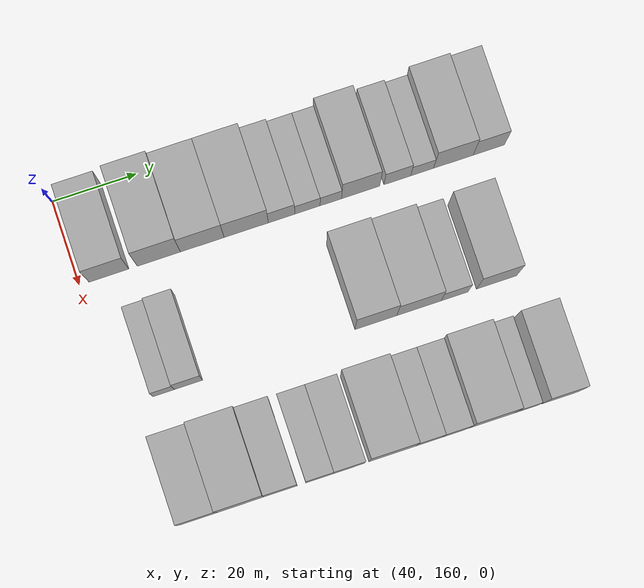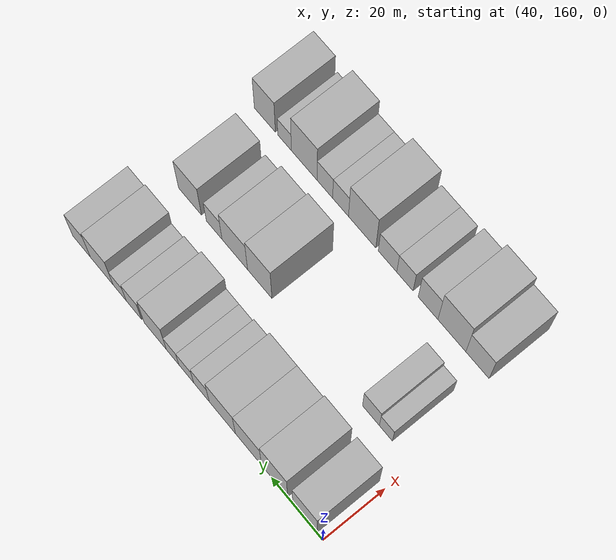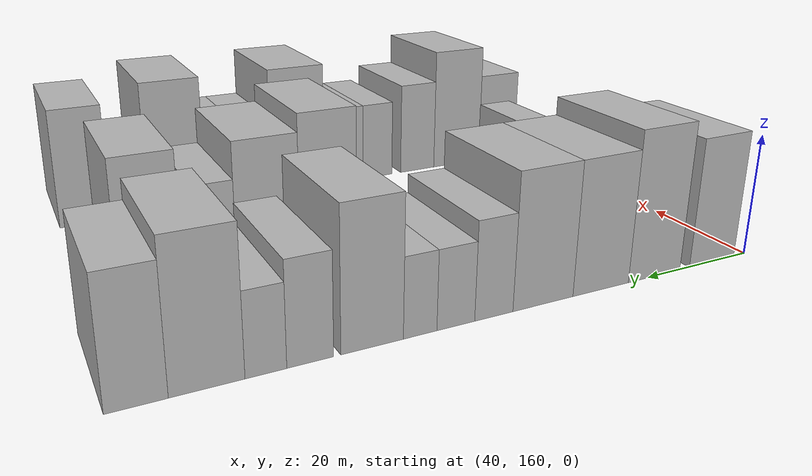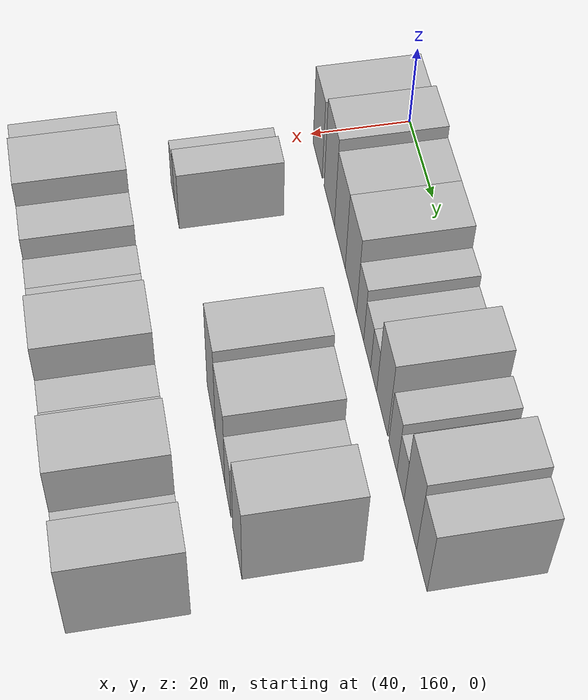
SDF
<sdf version="1.6">
 <world name="default">
  <model name="building_61">
   <static>1</static>
   <pose>50.0000 167.0110 0 0.000000 0.000000 0.000000</pose>
   <link name="link">
    <pose>0 0 10.50 0 0 0</pose>
    <collision name="collision"><geometry><box><size>20.0000 9.3905 21.0000</size></box></geometry></collision>
    <visual name="visual">
     <cast_shadows>0</cast_shadows>
     <geometry><box><size>20.0000 9.3905 21.0000</size></box></geometry>
     <material>
      <script>
       <uri>model://HANNAS_wall/materials/scripts</uri>
       <uri>model://HANNAS_wall/materials/textures</uri>
       <name>vrc/HANNAS_wall</name>
      </script>
     </material>
    </visual>
   </link>
  </model>
  <model name="building_62">
   <static>1</static>
   <pose>50.0000 178.8048 0 0.000000 0.000000 0.000000</pose>
   <link name="link">
    <pose>0 0 12.00 0 0 0</pose>
    <collision name="collision"><geometry><box><size>20.0000 10.1971 24.0000</size></box></geometry></collision>
    <visual name="visual">
     <cast_shadows>0</cast_shadows>
     <geometry><box><size>20.0000 10.1971 24.0000</size></box></geometry>
     <material>
      <script>
       <uri>model://HANNAS_wall/materials/scripts</uri>
       <uri>model://HANNAS_wall/materials/textures</uri>
       <name>vrc/HANNAS_wall</name>
      </script>
     </material>
    </visual>
   </link>
  </model>
  <model name="building_63">
   <static>1</static>
   <pose>50.0000 189.0639 0 0.000000 0.000000 0.000000</pose>
   <link name="link">
    <pose>0 0 10.50 0 0 0</pose>
    <collision name="collision"><geometry><box><size>20.0000 10.3211 21.0000</size></box></geometry></collision>
    <visual name="visual">
     <cast_shadows>0</cast_shadows>
     <geometry><box><size>20.0000 10.3211 21.0000</size></box></geometry>
     <material>
      <script>
       <uri>model://HANNAS_wall/materials/scripts</uri>
       <uri>model://HANNAS_wall/materials/textures</uri>
       <name>vrc/HANNAS_wall</name>
      </script>
     </material>
    </visual>
   </link>
  </model>
  <model name="building_64">
   <static>1</static>
   <pose>50.0000 199.4508 0 0.000000 0.000000 0.000000</pose>
   <link name="link">
    <pose>0 0 10.50 0 0 0</pose>
    <collision name="collision"><geometry><box><size>20.0000 10.4528 21.0000</size></box></geometry></collision>
    <visual name="visual">
     <cast_shadows>0</cast_shadows>
     <geometry><box><size>20.0000 10.4528 21.0000</size></box></geometry>
     <material>
      <script>
       <uri>model://HANNAS_wall/materials/scripts</uri>
       <uri>model://HANNAS_wall/materials/textures</uri>
       <name>vrc/HANNAS_wall</name>
      </script>
     </material>
    </visual>
   </link>
  </model>
  <model name="building_65">
   <static>1</static>
   <pose>50.0000 207.8298 0 0.000000 0.000000 0.000000</pose>
   <link name="link">
    <pose>0 0 7.50 0 0 0</pose>
    <collision name="collision"><geometry><box><size>20.0000 6.3052 15.0000</size></box></geometry></collision>
    <visual name="visual">
     <cast_shadows>0</cast_shadows>
     <geometry><box><size>20.0000 6.3052 15.0000</size></box></geometry>
     <material>
      <script>
       <uri>model://HANNAS_wall/materials/scripts</uri>
       <uri>model://HANNAS_wall/materials/textures</uri>
       <name>vrc/HANNAS_wall</name>
      </script>
     </material>
    </visual>
   </link>
  </model>
  <model name="building_66">
   <static>1</static>
   <pose>50.0000 213.9702 0 0.000000 0.000000 0.000000</pose>
   <link name="link">
    <pose>0 0 6.00 0 0 0</pose>
    <collision name="collision"><geometry><box><size>20.0000 5.9756 12.0000</size></box></geometry></collision>
    <visual name="visual">
     <cast_shadows>0</cast_shadows>
     <geometry><box><size>20.0000 5.9756 12.0000</size></box></geometry>
     <material>
      <script>
       <uri>model://HANNAS_wall/materials/scripts</uri>
       <uri>model://HANNAS_wall/materials/textures</uri>
       <name>vrc/HANNAS_wall</name>
      </script>
     </material>
    </visual>
   </link>
  </model>
  <model name="building_67">
   <static>1</static>
   <pose>50.0000 219.5075 0 0.000000 0.000000 0.000000</pose>
   <link name="link">
    <pose>0 0 6.00 0 0 0</pose>
    <collision name="collision"><geometry><box><size>20.0000 5.0991 12.0000</size></box></geometry></collision>
    <visual name="visual">
     <cast_shadows>0</cast_shadows>
     <geometry><box><size>20.0000 5.0991 12.0000</size></box></geometry>
     <material>
      <script>
       <uri>model://HANNAS_wall/materials/scripts</uri>
       <uri>model://HANNAS_wall/materials/textures</uri>
       <name>vrc/HANNAS_wall</name>
      </script>
     </material>
    </visual>
   </link>
  </model>
  <model name="building_68">
   <static>1</static>
   <pose>50.0000 226.5894 0 0.000000 0.000000 0.000000</pose>
   <link name="link">
    <pose>0 0 10.50 0 0 0</pose>
    <collision name="collision"><geometry><box><size>20.0000 9.0648 21.0000</size></box></geometry></collision>
    <visual name="visual">
     <cast_shadows>0</cast_shadows>
     <geometry><box><size>20.0000 9.0648 21.0000</size></box></geometry>
     <material>
      <script>
       <uri>model://HANNAS_wall/materials/scripts</uri>
       <uri>model://HANNAS_wall/materials/textures</uri>
       <name>vrc/HANNAS_wall</name>
      </script>
     </material>
    </visual>
   </link>
  </model>
  <model name="building_69">
   <static>1</static>
   <pose>50.0000 235.3108 0 0.000000 0.000000 0.000000</pose>
   <link name="link">
    <pose>0 0 7.50 0 0 0</pose>
    <collision name="collision"><geometry><box><size>20.0000 6.3780 15.0000</size></box></geometry></collision>
    <visual name="visual">
     <cast_shadows>0</cast_shadows>
     <geometry><box><size>20.0000 6.3780 15.0000</size></box></geometry>
     <material>
      <script>
       <uri>model://HANNAS_wall/materials/scripts</uri>
       <uri>model://HANNAS_wall/materials/textures</uri>
       <name>vrc/HANNAS_wall</name>
      </script>
     </material>
    </visual>
   </link>
  </model>
  <model name="building_70">
   <static>1</static>
   <pose>50.0000 241.2170 0 0.000000 0.000000 0.000000</pose>
   <link name="link">
    <pose>0 0 6.00 0 0 0</pose>
    <collision name="collision"><geometry><box><size>20.0000 5.4345 12.0000</size></box></geometry></collision>
    <visual name="visual">
     <cast_shadows>0</cast_shadows>
     <geometry><box><size>20.0000 5.4345 12.0000</size></box></geometry>
     <material>
      <script>
       <uri>model://HANNAS_wall/materials/scripts</uri>
       <uri>model://HANNAS_wall/materials/textures</uri>
       <name>vrc/HANNAS_wall</name>
      </script>
     </material>
    </visual>
   </link>
  </model>
  <model name="building_71">
   <static>1</static>
   <pose>50.0000 248.6540 0 0.000000 0.000000 0.000000</pose>
   <link name="link">
    <pose>0 0 10.50 0 0 0</pose>
    <collision name="collision"><geometry><box><size>20.0000 9.4393 21.0000</size></box></geometry></collision>
    <visual name="visual">
     <cast_shadows>0</cast_shadows>
     <geometry><box><size>20.0000 9.4393 21.0000</size></box></geometry>
     <material>
      <script>
       <uri>model://HANNAS_wall/materials/scripts</uri>
       <uri>model://HANNAS_wall/materials/textures</uri>
       <name>vrc/HANNAS_wall</name>
      </script>
     </material>
    </visual>
   </link>
  </model>
  <model name="building_72">
   <static>1</static>
   <pose>50.0000 257.1199 0 0.000000 0.000000 0.000000</pose>
   <link name="link">
    <pose>0 0 9.00 0 0 0</pose>
    <collision name="collision"><geometry><box><size>20.0000 7.4927 18.0000</size></box></geometry></collision>
    <visual name="visual">
     <cast_shadows>0</cast_shadows>
     <geometry><box><size>20.0000 7.4927 18.0000</size></box></geometry>
     <material>
      <script>
       <uri>model://HANNAS_wall/materials/scripts</uri>
       <uri>model://HANNAS_wall/materials/textures</uri>
       <name>vrc/HANNAS_wall</name>
      </script>
     </material>
    </visual>
   </link>
  </model>
  <model name="building_142">
   <static>1</static>
   <pose>79.0000 170.5180 0 0.000000 0.000000 0.000000</pose>
   <link name="link">
    <pose>0 0 6.00 0 0 0</pose>
    <collision name="collision"><geometry><box><size>20.0000 5.0300 12.0000</size></box></geometry></collision>
    <visual name="visual">
     <cast_shadows>0</cast_shadows>
     <geometry><box><size>20.0000 5.0300 12.0000</size></box></geometry>
     <material>
      <script>
       <uri>model://HANNAS_wall/materials/scripts</uri>
       <uri>model://HANNAS_wall/materials/textures</uri>
       <name>vrc/HANNAS_wall</name>
      </script>
     </material>
    </visual>
   </link>
  </model>
  <model name="building_143">
   <static>1</static>
   <pose>79.0000 176.3296 0 0.000000 0.000000 0.000000</pose>
   <link name="link">
    <pose>0 0 7.50 0 0 0</pose>
    <collision name="collision"><geometry><box><size>20.0000 6.5931 15.0000</size></box></geometry></collision>
    <visual name="visual">
     <cast_shadows>0</cast_shadows>
     <geometry><box><size>20.0000 6.5931 15.0000</size></box></geometry>
     <material>
      <script>
       <uri>model://HANNAS_wall/materials/scripts</uri>
       <uri>model://HANNAS_wall/materials/textures</uri>
       <name>vrc/HANNAS_wall</name>
      </script>
     </material>
    </visual>
   </link>
  </model>
  <model name="building_144">
   <static>1</static>
   <pose>79.0000 220.4301 0 0.000000 0.000000 0.000000</pose>
   <link name="link">
    <pose>0 0 12.00 0 0 0</pose>
    <collision name="collision"><geometry><box><size>20.0000 9.8693 24.0000</size></box></geometry></collision>
    <visual name="visual">
     <cast_shadows>0</cast_shadows>
     <geometry><box><size>20.0000 9.8693 24.0000</size></box></geometry>
     <material>
      <script>
       <uri>model://HANNAS_wall/materials/scripts</uri>
       <uri>model://HANNAS_wall/materials/textures</uri>
       <name>vrc/HANNAS_wall</name>
      </script>
     </material>
    </visual>
   </link>
  </model>
  <model name="building_145">
   <static>1</static>
   <pose>79.0000 230.5847 0 0.000000 0.000000 0.000000</pose>
   <link name="link">
    <pose>0 0 10.50 0 0 0</pose>
    <collision name="collision"><geometry><box><size>20.0000 10.4399 21.0000</size></box></geometry></collision>
    <visual name="visual">
     <cast_shadows>0</cast_shadows>
     <geometry><box><size>20.0000 10.4399 21.0000</size></box></geometry>
     <material>
      <script>
       <uri>model://HANNAS_wall/materials/scripts</uri>
       <uri>model://HANNAS_wall/materials/textures</uri>
       <name>vrc/HANNAS_wall</name>
      </script>
     </material>
    </visual>
   </link>
  </model>
  <model name="building_146">
   <static>1</static>
   <pose>79.0000 239.0333 0 0.000000 0.000000 0.000000</pose>
   <link name="link">
    <pose>0 0 7.50 0 0 0</pose>
    <collision name="collision"><geometry><box><size>20.0000 6.4573 15.0000</size></box></geometry></collision>
    <visual name="visual">
     <cast_shadows>0</cast_shadows>
     <geometry><box><size>20.0000 6.4573 15.0000</size></box></geometry>
     <material>
      <script>
       <uri>model://HANNAS_wall/materials/scripts</uri>
       <uri>model://HANNAS_wall/materials/textures</uri>
       <name>vrc/HANNAS_wall</name>
      </script>
     </material>
    </visual>
   </link>
  </model>
  <model name="building_147">
   <static>1</static>
   <pose>79.0000 249.0173 0 0.000000 0.000000 0.000000</pose>
   <link name="link">
    <pose>0 0 10.50 0 0 0</pose>
    <collision name="collision"><geometry><box><size>20.0000 9.5108 21.0000</size></box></geometry></collision>
    <visual name="visual">
     <cast_shadows>0</cast_shadows>
     <geometry><box><size>20.0000 9.5108 21.0000</size></box></geometry>
     <material>
      <script>
       <uri>model://HANNAS_wall/materials/scripts</uri>
       <uri>model://HANNAS_wall/materials/textures</uri>
       <name>vrc/HANNAS_wall</name>
      </script>
     </material>
    </visual>
   </link>
  </model>
  <model name="building_211">
   <static>1</static>
   <pose>108.0000 169.1861 0 0.000000 0.000000 0.000000</pose>
   <link name="link">
    <pose>0 0 9.00 0 0 0</pose>
    <collision name="collision"><geometry><box><size>20.0000 8.9510 18.0000</size></box></geometry></collision>
    <visual name="visual">
     <cast_shadows>0</cast_shadows>
     <geometry><box><size>20.0000 8.9510 18.0000</size></box></geometry>
     <material>
      <script>
       <uri>model://HANNAS_wall/materials/scripts</uri>
       <uri>model://HANNAS_wall/materials/textures</uri>
       <name>vrc/HANNAS_wall</name>
      </script>
     </material>
    </visual>
   </link>
  </model>
  <model name="building_212">
   <static>1</static>
   <pose>108.0000 179.0940 0 0.000000 0.000000 0.000000</pose>
   <link name="link">
    <pose>0 0 12.00 0 0 0</pose>
    <collision name="collision"><geometry><box><size>20.0000 10.8648 24.0000</size></box></geometry></collision>
    <visual name="visual">
     <cast_shadows>0</cast_shadows>
     <geometry><box><size>20.0000 10.8648 24.0000</size></box></geometry>
     <material>
      <script>
       <uri>model://HANNAS_wall/materials/scripts</uri>
       <uri>model://HANNAS_wall/materials/textures</uri>
       <name>vrc/HANNAS_wall</name>
      </script>
     </material>
    </visual>
   </link>
  </model>
  <model name="building_213">
   <static>1</static>
   <pose>108.0000 188.3837 0 0.000000 0.000000 0.000000</pose>
   <link name="link">
    <pose>0 0 9.00 0 0 0</pose>
    <collision name="collision"><geometry><box><size>20.0000 7.7146 18.0000</size></box></geometry></collision>
    <visual name="visual">
     <cast_shadows>0</cast_shadows>
     <geometry><box><size>20.0000 7.7146 18.0000</size></box></geometry>
     <material>
      <script>
       <uri>model://HANNAS_wall/materials/scripts</uri>
       <uri>model://HANNAS_wall/materials/textures</uri>
       <name>vrc/HANNAS_wall</name>
      </script>
     </material>
    </visual>
   </link>
  </model>
  <model name="building_214">
   <static>1</static>
   <pose>108.0000 197.4641 0 0.000000 0.000000 0.000000</pose>
   <link name="link">
    <pose>0 0 7.50 0 0 0</pose>
    <collision name="collision"><geometry><box><size>20.0000 6.4462 15.0000</size></box></geometry></collision>
    <visual name="visual">
     <cast_shadows>0</cast_shadows>
     <geometry><box><size>20.0000 6.4462 15.0000</size></box></geometry>
     <material>
      <script>
       <uri>model://HANNAS_wall/materials/scripts</uri>
       <uri>model://HANNAS_wall/materials/textures</uri>
       <name>vrc/HANNAS_wall</name>
      </script>
     </material>
    </visual>
   </link>
  </model>
  <model name="building_215">
   <static>1</static>
   <pose>108.0000 204.3552 0 0.000000 0.000000 0.000000</pose>
   <link name="link">
    <pose>0 0 7.50 0 0 0</pose>
    <collision name="collision"><geometry><box><size>20.0000 7.3359 15.0000</size></box></geometry></collision>
    <visual name="visual">
     <cast_shadows>0</cast_shadows>
     <geometry><box><size>20.0000 7.3359 15.0000</size></box></geometry>
     <material>
      <script>
       <uri>model://HANNAS_wall/materials/scripts</uri>
       <uri>model://HANNAS_wall/materials/textures</uri>
       <name>vrc/HANNAS_wall</name>
      </script>
     </material>
    </visual>
   </link>
  </model>
  <model name="building_216">
   <static>1</static>
   <pose>108.0000 214.4813 0 0.000000 0.000000 0.000000</pose>
   <link name="link">
    <pose>0 0 12.00 0 0 0</pose>
    <collision name="collision"><geometry><box><size>20.0000 10.9163 24.0000</size></box></geometry></collision>
    <visual name="visual">
     <cast_shadows>0</cast_shadows>
     <geometry><box><size>20.0000 10.9163 24.0000</size></box></geometry>
     <material>
      <script>
       <uri>model://HANNAS_wall/materials/scripts</uri>
       <uri>model://HANNAS_wall/materials/textures</uri>
       <name>vrc/HANNAS_wall</name>
      </script>
     </material>
    </visual>
   </link>
  </model>
  <model name="building_217">
   <static>1</static>
   <pose>108.0000 223.1496 0 0.000000 0.000000 0.000000</pose>
   <link name="link">
    <pose>0 0 7.50 0 0 0</pose>
    <collision name="collision"><geometry><box><size>20.0000 6.4203 15.0000</size></box></geometry></collision>
    <visual name="visual">
     <cast_shadows>0</cast_shadows>
     <geometry><box><size>20.0000 6.4203 15.0000</size></box></geometry>
     <material>
      <script>
       <uri>model://HANNAS_wall/materials/scripts</uri>
       <uri>model://HANNAS_wall/materials/textures</uri>
       <name>vrc/HANNAS_wall</name>
      </script>
     </material>
    </visual>
   </link>
  </model>
  <model name="building_218">
   <static>1</static>
   <pose>108.0000 229.5086 0 0.000000 0.000000 0.000000</pose>
   <link name="link">
    <pose>0 0 7.50 0 0 0</pose>
    <collision name="collision"><geometry><box><size>20.0000 6.2977 15.0000</size></box></geometry></collision>
    <visual name="visual">
     <cast_shadows>0</cast_shadows>
     <geometry><box><size>20.0000 6.2977 15.0000</size></box></geometry>
     <material>
      <script>
       <uri>model://HANNAS_wall/materials/scripts</uri>
       <uri>model://HANNAS_wall/materials/textures</uri>
       <name>vrc/HANNAS_wall</name>
      </script>
     </material>
    </visual>
   </link>
  </model>
  <model name="building_219">
   <static>1</static>
   <pose>108.0000 237.9156 0 0.000000 0.000000 0.000000</pose>
   <link name="link">
    <pose>0 0 12.00 0 0 0</pose>
    <collision name="collision"><geometry><box><size>20.0000 10.5163 24.0000</size></box></geometry></collision>
    <visual name="visual">
     <cast_shadows>0</cast_shadows>
     <geometry><box><size>20.0000 10.5163 24.0000</size></box></geometry>
     <material>
      <script>
       <uri>model://HANNAS_wall/materials/scripts</uri>
       <uri>model://HANNAS_wall/materials/textures</uri>
       <name>vrc/HANNAS_wall</name>
      </script>
     </material>
    </visual>
   </link>
  </model>
  <model name="building_220">
   <static>1</static>
   <pose>108.0000 245.9698 0 0.000000 0.000000 0.000000</pose>
   <link name="link">
    <pose>0 0 6.00 0 0 0</pose>
    <collision name="collision"><geometry><box><size>20.0000 5.5921 12.0000</size></box></geometry></collision>
    <visual name="visual">
     <cast_shadows>0</cast_shadows>
     <geometry><box><size>20.0000 5.5921 12.0000</size></box></geometry>
     <material>
      <script>
       <uri>model://HANNAS_wall/materials/scripts</uri>
       <uri>model://HANNAS_wall/materials/textures</uri>
       <name>vrc/HANNAS_wall</name>
      </script>
     </material>
    </visual>
   </link>
  </model>
  <model name="building_221">
   <static>1</static>
   <pose>108.0000 254.1120 0 0.000000 0.000000 0.000000</pose>
   <link name="link">
    <pose>0 0 10.50 0 0 0</pose>
    <collision name="collision"><geometry><box><size>20.0000 8.6923 21.0000</size></box></geometry></collision>
    <visual name="visual">
     <cast_shadows>0</cast_shadows>
     <geometry><box><size>20.0000 8.6923 21.0000</size></box></geometry>
     <material>
      <script>
       <uri>model://HANNAS_wall/materials/scripts</uri>
       <uri>model://HANNAS_wall/materials/textures</uri>
       <name>vrc/HANNAS_wall</name>
      </script>
     </material>
    </visual>
   </link>
  </model>
 </world>
</sdf>
